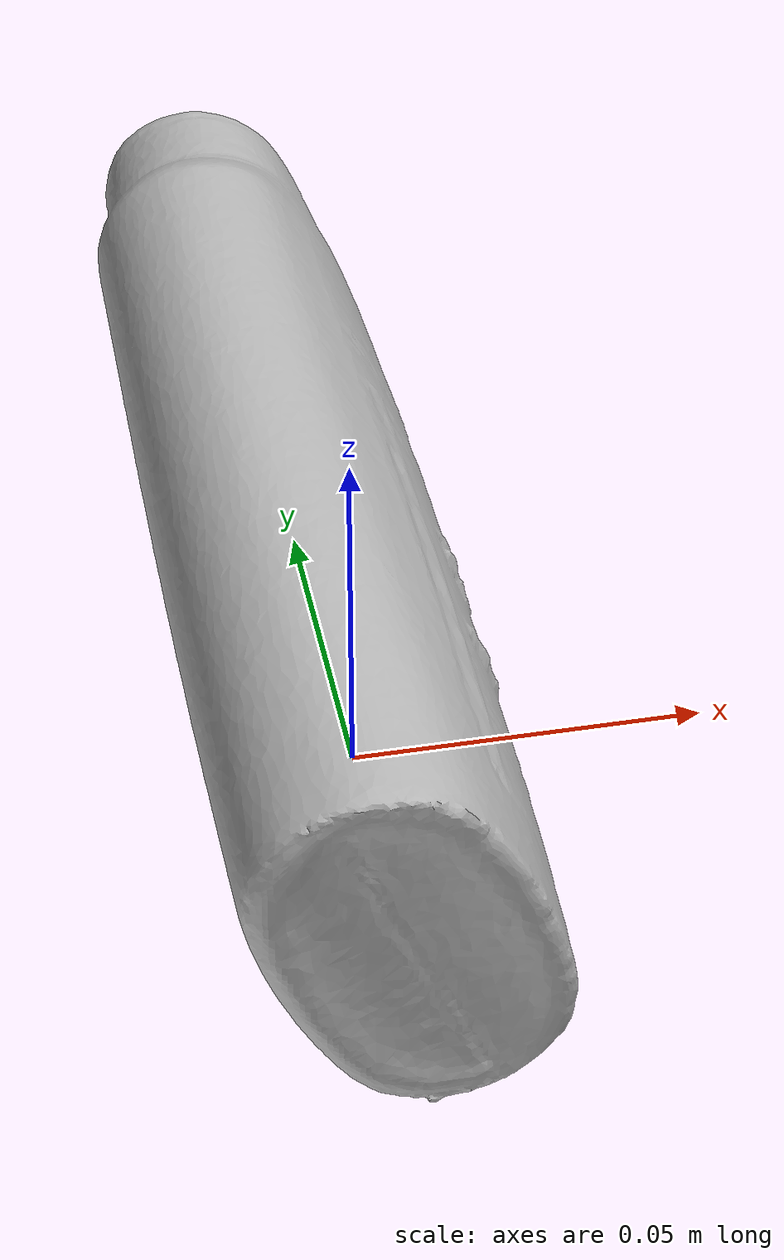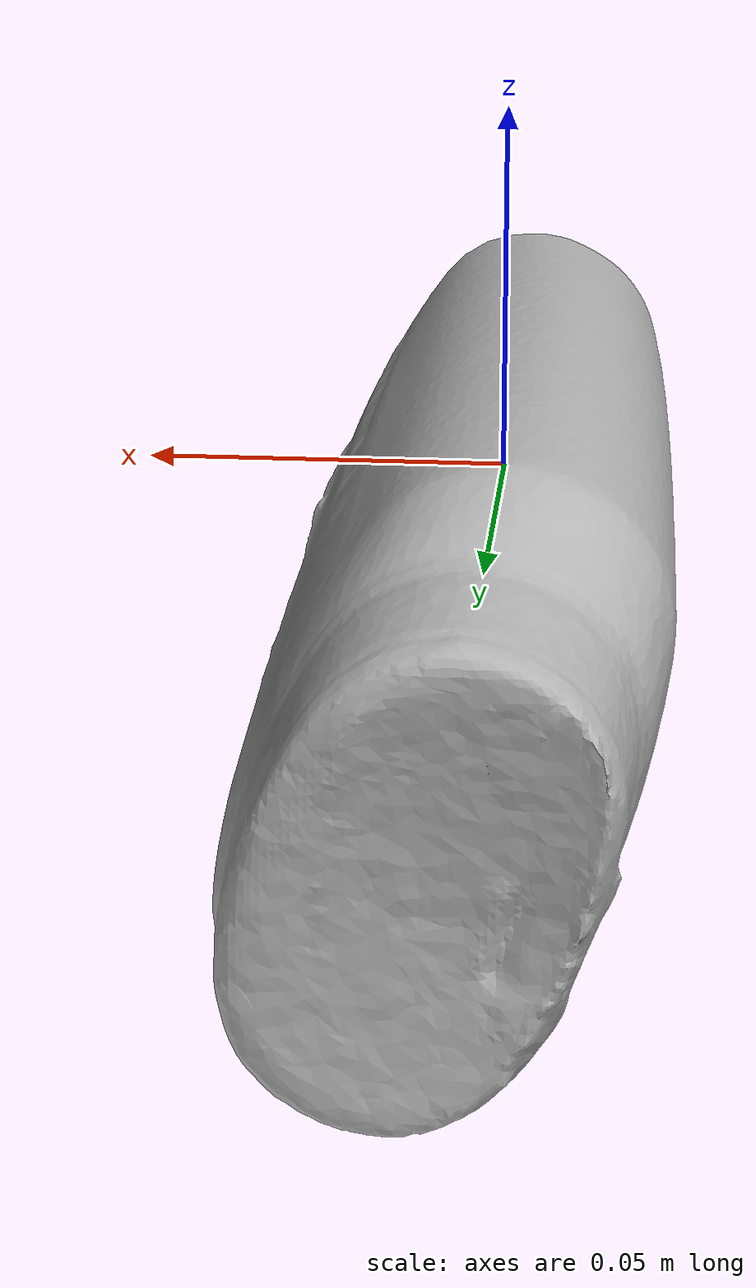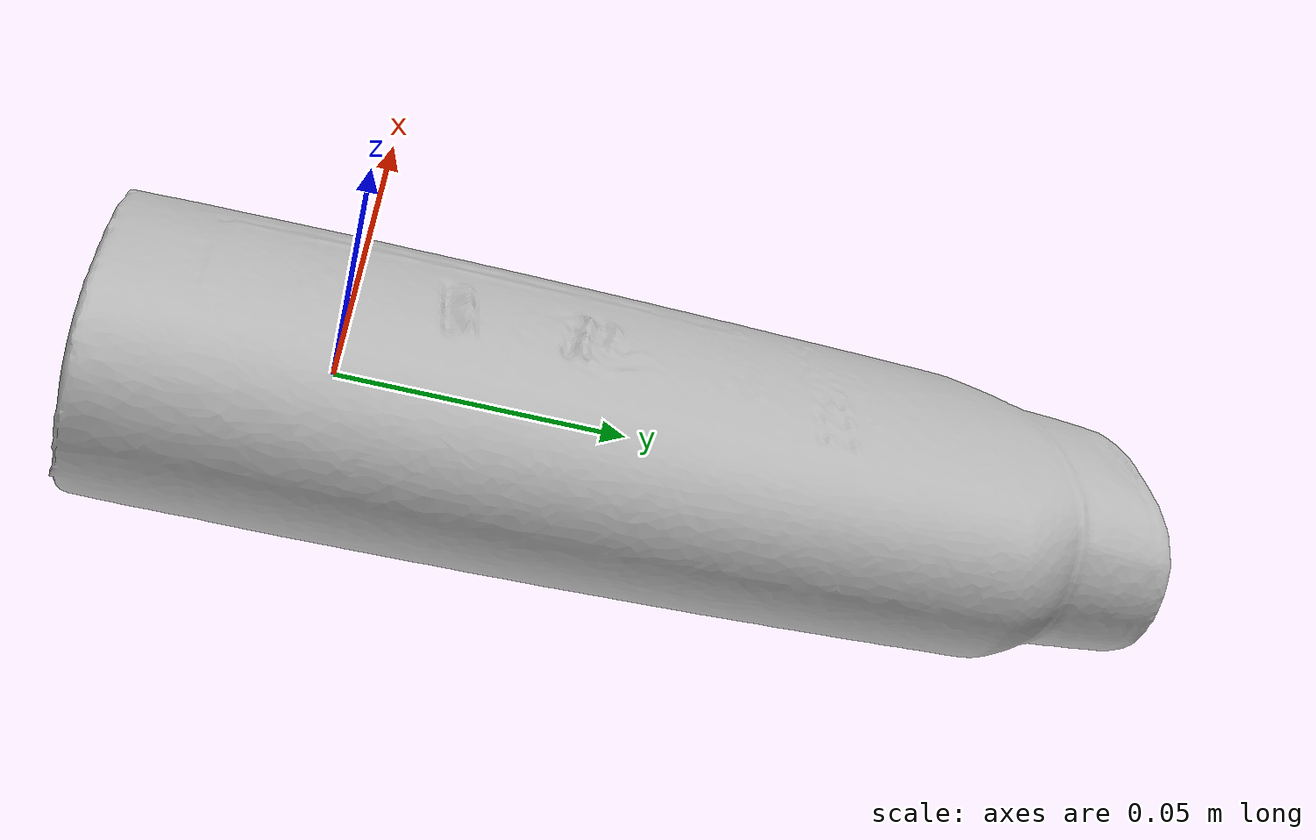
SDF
<?xml version='1.0'?>
<sdf version="1.4">
  <model name="Shampoo">
    <static>false</static>
    <link name="link">
      <inertial>
        <pose>0.0013952765484334165 0.051958998727382195 -0.0018108260608439507 1.5538299741710024 0.3984106696958092 3.1403803166827062</pose>
        <mass>0.03857680151762805</mass>
        <inertia>
          <ixx>0.00010798802244758554</ixx>
          <ixy>-6.943082506205243e-21</ixy>
          <ixz>-7.345705307849507e-21</ixz>
          <iyy>0.00010122405364985622</iyy>
          <iyz>2.6095156694892013e-20</iyz>
          <izz>1.4820134243253202e-05</izz>
        </inertia>
      </inertial>
      <collision name="collision">
        <geometry>
          <mesh>
            <!-- Use a downsampled mesh for collisions -->
            <uri>model:///Shampoo/Shampoo_250_collision.obj</uri>
	        </mesh>
        </geometry>
        <surface>
      </surface>
      </collision>
      <visual name="visual">
        <geometry>
          <mesh>
            <uri>model:///Shampoo/Shampoo_25k_tex.obj</uri>
	        </mesh>
        </geometry>
        <material>
          <script>
            <uri>model:///Shampoo/Shampoo.material</uri>
            <name>Shampoo</name>
          </script>
        </material>
      </visual>
    </link>
  </model>
</sdf>
